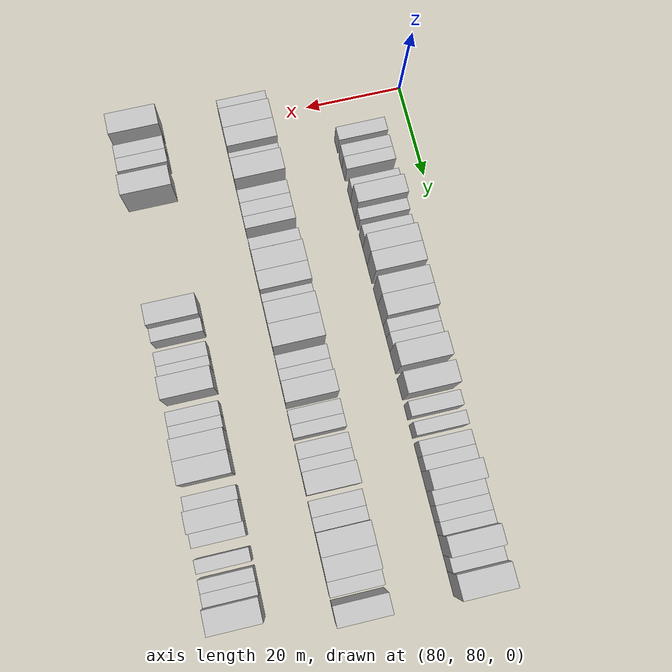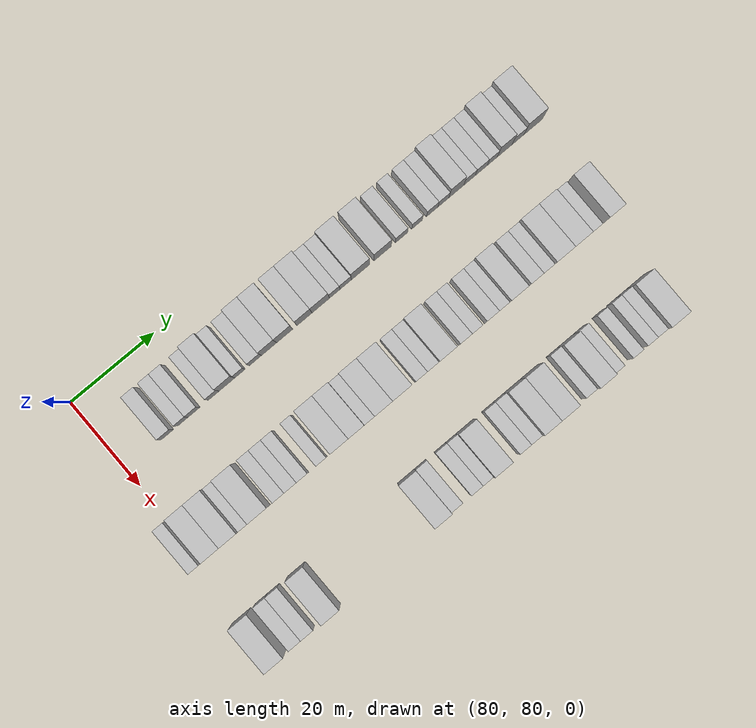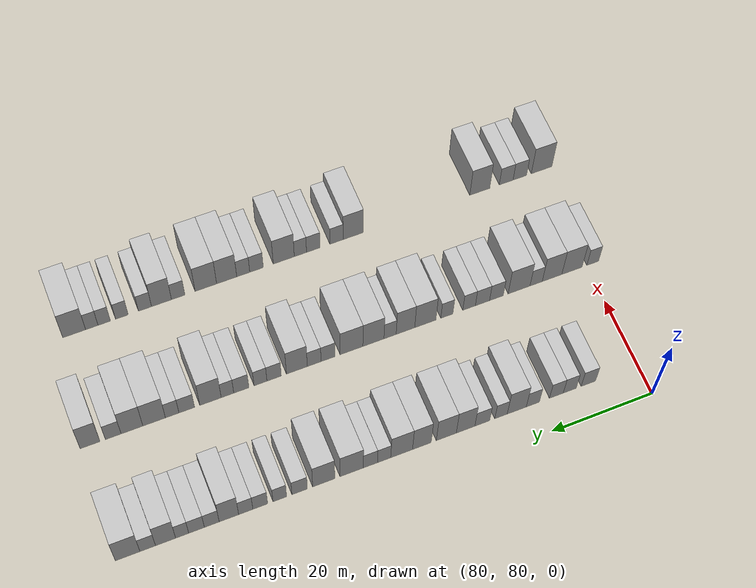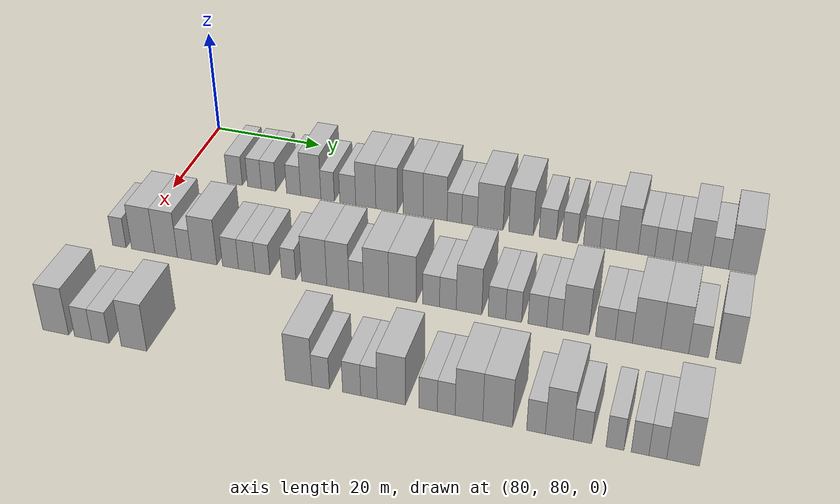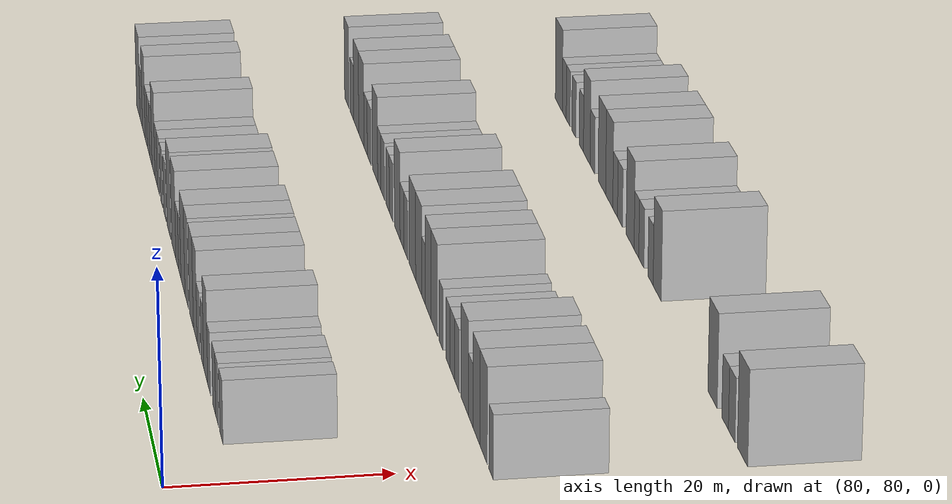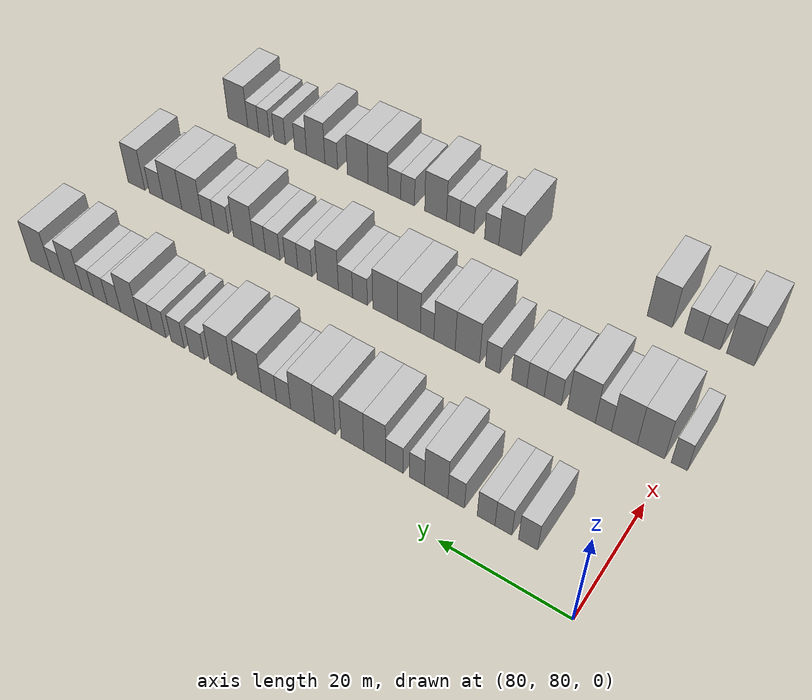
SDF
<sdf version="1.6">
 <world name="default">
  <model name="building_685">
   <static>1</static>
   <pose>91.0000 89.9320 0 0.000000 0.000000 0.000000</pose>
   <link name="link">
    <pose>0 0 3.00 0 0 0</pose>
    <collision name="collision"><geometry><box><size>10.0000 2.8861 6.0000</size></box></geometry></collision>
    <visual name="visual">
     <cast_shadows>0</cast_shadows>
     <geometry><box><size>10.0000 2.8861 6.0000</size></box></geometry>
     <material>
      <script>
       <uri>model://HANNAS_wall/materials/scripts</uri>
       <uri>model://HANNAS_wall/materials/textures</uri>
       <name>vrc/HANNAS_wall</name>
      </script>
     </material>
    </visual>
   </link>
  </model>
  <model name="building_686">
   <static>1</static>
   <pose>91.0000 93.6638 0 0.000000 0.000000 0.000000</pose>
   <link name="link">
    <pose>0 0 3.00 0 0 0</pose>
    <collision name="collision"><geometry><box><size>10.0000 2.5773 6.0000</size></box></geometry></collision>
    <visual name="visual">
     <cast_shadows>0</cast_shadows>
     <geometry><box><size>10.0000 2.5773 6.0000</size></box></geometry>
     <material>
      <script>
       <uri>model://HANNAS_wall/materials/scripts</uri>
       <uri>model://HANNAS_wall/materials/textures</uri>
       <name>vrc/HANNAS_wall</name>
      </script>
     </material>
    </visual>
   </link>
  </model>
  <model name="building_687">
   <static>1</static>
   <pose>91.0000 96.3262 0 0.000000 0.000000 0.000000</pose>
   <link name="link">
    <pose>0 0 3.00 0 0 0</pose>
    <collision name="collision"><geometry><box><size>10.0000 2.7476 6.0000</size></box></geometry></collision>
    <visual name="visual">
     <cast_shadows>0</cast_shadows>
     <geometry><box><size>10.0000 2.7476 6.0000</size></box></geometry>
     <material>
      <script>
       <uri>model://HANNAS_wall/materials/scripts</uri>
       <uri>model://HANNAS_wall/materials/textures</uri>
       <name>vrc/HANNAS_wall</name>
      </script>
     </material>
    </visual>
   </link>
  </model>
  <model name="building_688">
   <static>1</static>
   <pose>91.0000 101.0052 0 0.000000 0.000000 0.000000</pose>
   <link name="link">
    <pose>0 0 3.00 0 0 0</pose>
    <collision name="collision"><geometry><box><size>10.0000 2.6104 6.0000</size></box></geometry></collision>
    <visual name="visual">
     <cast_shadows>0</cast_shadows>
     <geometry><box><size>10.0000 2.6104 6.0000</size></box></geometry>
     <material>
      <script>
       <uri>model://HANNAS_wall/materials/scripts</uri>
       <uri>model://HANNAS_wall/materials/textures</uri>
       <name>vrc/HANNAS_wall</name>
      </script>
     </material>
    </visual>
   </link>
  </model>
  <model name="building_689">
   <static>1</static>
   <pose>91.0000 104.1891 0 0.000000 0.000000 0.000000</pose>
   <link name="link">
    <pose>0 0 4.50 0 0 0</pose>
    <collision name="collision"><geometry><box><size>10.0000 3.7574 9.0000</size></box></geometry></collision>
    <visual name="visual">
     <cast_shadows>0</cast_shadows>
     <geometry><box><size>10.0000 3.7574 9.0000</size></box></geometry>
     <material>
      <script>
       <uri>model://HANNAS_wall/materials/scripts</uri>
       <uri>model://HANNAS_wall/materials/textures</uri>
       <name>vrc/HANNAS_wall</name>
      </script>
     </material>
    </visual>
   </link>
  </model>
  <model name="building_690">
   <static>1</static>
   <pose>91.0000 107.2931 0 0.000000 0.000000 0.000000</pose>
   <link name="link">
    <pose>0 0 3.00 0 0 0</pose>
    <collision name="collision"><geometry><box><size>10.0000 2.4506 6.0000</size></box></geometry></collision>
    <visual name="visual">
     <cast_shadows>0</cast_shadows>
     <geometry><box><size>10.0000 2.4506 6.0000</size></box></geometry>
     <material>
      <script>
       <uri>model://HANNAS_wall/materials/scripts</uri>
       <uri>model://HANNAS_wall/materials/textures</uri>
       <name>vrc/HANNAS_wall</name>
      </script>
     </material>
    </visual>
   </link>
  </model>
  <model name="building_691">
   <static>1</static>
   <pose>91.0000 110.9694 0 0.000000 0.000000 0.000000</pose>
   <link name="link">
    <pose>0 0 3.00 0 0 0</pose>
    <collision name="collision"><geometry><box><size>10.0000 2.9019 6.0000</size></box></geometry></collision>
    <visual name="visual">
     <cast_shadows>0</cast_shadows>
     <geometry><box><size>10.0000 2.9019 6.0000</size></box></geometry>
     <material>
      <script>
       <uri>model://HANNAS_wall/materials/scripts</uri>
       <uri>model://HANNAS_wall/materials/textures</uri>
       <name>vrc/HANNAS_wall</name>
      </script>
     </material>
    </visual>
   </link>
  </model>
  <model name="building_692">
   <static>1</static>
   <pose>91.0000 114.2379 0 0.000000 0.000000 0.000000</pose>
   <link name="link">
    <pose>0 0 4.50 0 0 0</pose>
    <collision name="collision"><geometry><box><size>10.0000 3.6351 9.0000</size></box></geometry></collision>
    <visual name="visual">
     <cast_shadows>0</cast_shadows>
     <geometry><box><size>10.0000 3.6351 9.0000</size></box></geometry>
     <material>
      <script>
       <uri>model://HANNAS_wall/materials/scripts</uri>
       <uri>model://HANNAS_wall/materials/textures</uri>
       <name>vrc/HANNAS_wall</name>
      </script>
     </material>
    </visual>
   </link>
  </model>
  <model name="building_693">
   <static>1</static>
   <pose>91.0000 117.9960 0 0.000000 0.000000 0.000000</pose>
   <link name="link">
    <pose>0 0 4.50 0 0 0</pose>
    <collision name="collision"><geometry><box><size>10.0000 3.8811 9.0000</size></box></geometry></collision>
    <visual name="visual">
     <cast_shadows>0</cast_shadows>
     <geometry><box><size>10.0000 3.8811 9.0000</size></box></geometry>
     <material>
      <script>
       <uri>model://HANNAS_wall/materials/scripts</uri>
       <uri>model://HANNAS_wall/materials/textures</uri>
       <name>vrc/HANNAS_wall</name>
      </script>
     </material>
    </visual>
   </link>
  </model>
  <model name="building_694">
   <static>1</static>
   <pose>91.0000 122.7398 0 0.000000 0.000000 0.000000</pose>
   <link name="link">
    <pose>0 0 4.50 0 0 0</pose>
    <collision name="collision"><geometry><box><size>10.0000 3.6064 9.0000</size></box></geometry></collision>
    <visual name="visual">
     <cast_shadows>0</cast_shadows>
     <geometry><box><size>10.0000 3.6064 9.0000</size></box></geometry>
     <material>
      <script>
       <uri>model://HANNAS_wall/materials/scripts</uri>
       <uri>model://HANNAS_wall/materials/textures</uri>
       <name>vrc/HANNAS_wall</name>
      </script>
     </material>
    </visual>
   </link>
  </model>
  <model name="building_695">
   <static>1</static>
   <pose>91.0000 126.6484 0 0.000000 0.000000 0.000000</pose>
   <link name="link">
    <pose>0 0 4.50 0 0 0</pose>
    <collision name="collision"><geometry><box><size>10.0000 4.2108 9.0000</size></box></geometry></collision>
    <visual name="visual">
     <cast_shadows>0</cast_shadows>
     <geometry><box><size>10.0000 4.2108 9.0000</size></box></geometry>
     <material>
      <script>
       <uri>model://HANNAS_wall/materials/scripts</uri>
       <uri>model://HANNAS_wall/materials/textures</uri>
       <name>vrc/HANNAS_wall</name>
      </script>
     </material>
    </visual>
   </link>
  </model>
  <model name="building_696">
   <static>1</static>
   <pose>91.0000 130.0273 0 0.000000 0.000000 0.000000</pose>
   <link name="link">
    <pose>0 0 3.00 0 0 0</pose>
    <collision name="collision"><geometry><box><size>10.0000 2.5471 6.0000</size></box></geometry></collision>
    <visual name="visual">
     <cast_shadows>0</cast_shadows>
     <geometry><box><size>10.0000 2.5471 6.0000</size></box></geometry>
     <material>
      <script>
       <uri>model://HANNAS_wall/materials/scripts</uri>
       <uri>model://HANNAS_wall/materials/textures</uri>
       <name>vrc/HANNAS_wall</name>
      </script>
     </material>
    </visual>
   </link>
  </model>
  <model name="building_697">
   <static>1</static>
   <pose>91.0000 132.6648 0 0.000000 0.000000 0.000000</pose>
   <link name="link">
    <pose>0 0 3.00 0 0 0</pose>
    <collision name="collision"><geometry><box><size>10.0000 2.7278 6.0000</size></box></geometry></collision>
    <visual name="visual">
     <cast_shadows>0</cast_shadows>
     <geometry><box><size>10.0000 2.7278 6.0000</size></box></geometry>
     <material>
      <script>
       <uri>model://HANNAS_wall/materials/scripts</uri>
       <uri>model://HANNAS_wall/materials/textures</uri>
       <name>vrc/HANNAS_wall</name>
      </script>
     </material>
    </visual>
   </link>
  </model>
  <model name="building_698">
   <static>1</static>
   <pose>91.0000 136.2402 0 0.000000 0.000000 0.000000</pose>
   <link name="link">
    <pose>0 0 4.50 0 0 0</pose>
    <collision name="collision"><geometry><box><size>10.0000 4.4229 9.0000</size></box></geometry></collision>
    <visual name="visual">
     <cast_shadows>0</cast_shadows>
     <geometry><box><size>10.0000 4.4229 9.0000</size></box></geometry>
     <material>
      <script>
       <uri>model://HANNAS_wall/materials/scripts</uri>
       <uri>model://HANNAS_wall/materials/textures</uri>
       <name>vrc/HANNAS_wall</name>
      </script>
     </material>
    </visual>
   </link>
  </model>
  <model name="building_699">
   <static>1</static>
   <pose>91.0000 141.5453 0 0.000000 0.000000 0.000000</pose>
   <link name="link">
    <pose>0 0 4.50 0 0 0</pose>
    <collision name="collision"><geometry><box><size>10.0000 4.1873 9.0000</size></box></geometry></collision>
    <visual name="visual">
     <cast_shadows>0</cast_shadows>
     <geometry><box><size>10.0000 4.1873 9.0000</size></box></geometry>
     <material>
      <script>
       <uri>model://HANNAS_wall/materials/scripts</uri>
       <uri>model://HANNAS_wall/materials/textures</uri>
       <name>vrc/HANNAS_wall</name>
      </script>
     </material>
    </visual>
   </link>
  </model>
  <model name="building_700">
   <static>1</static>
   <pose>91.0000 146.0942 0 0.000000 0.000000 0.000000</pose>
   <link name="link">
    <pose>0 0 3.00 0 0 0</pose>
    <collision name="collision"><geometry><box><size>10.0000 2.9106 6.0000</size></box></geometry></collision>
    <visual name="visual">
     <cast_shadows>0</cast_shadows>
     <geometry><box><size>10.0000 2.9106 6.0000</size></box></geometry>
     <material>
      <script>
       <uri>model://HANNAS_wall/materials/scripts</uri>
       <uri>model://HANNAS_wall/materials/textures</uri>
       <name>vrc/HANNAS_wall</name>
      </script>
     </material>
    </visual>
   </link>
  </model>
  <model name="building_701">
   <static>1</static>
   <pose>91.0000 149.8299 0 0.000000 0.000000 0.000000</pose>
   <link name="link">
    <pose>0 0 3.00 0 0 0</pose>
    <collision name="collision"><geometry><box><size>10.0000 2.5608 6.0000</size></box></geometry></collision>
    <visual name="visual">
     <cast_shadows>0</cast_shadows>
     <geometry><box><size>10.0000 2.5608 6.0000</size></box></geometry>
     <material>
      <script>
       <uri>model://HANNAS_wall/materials/scripts</uri>
       <uri>model://HANNAS_wall/materials/textures</uri>
       <name>vrc/HANNAS_wall</name>
      </script>
     </material>
    </visual>
   </link>
  </model>
  <model name="building_702">
   <static>1</static>
   <pose>91.0000 153.4965 0 0.000000 0.000000 0.000000</pose>
   <link name="link">
    <pose>0 0 3.00 0 0 0</pose>
    <collision name="collision"><geometry><box><size>10.0000 2.7725 6.0000</size></box></geometry></collision>
    <visual name="visual">
     <cast_shadows>0</cast_shadows>
     <geometry><box><size>10.0000 2.7725 6.0000</size></box></geometry>
     <material>
      <script>
       <uri>model://HANNAS_wall/materials/scripts</uri>
       <uri>model://HANNAS_wall/materials/textures</uri>
       <name>vrc/HANNAS_wall</name>
      </script>
     </material>
    </visual>
   </link>
  </model>
  <model name="building_703">
   <static>1</static>
   <pose>91.0000 156.2054 0 0.000000 0.000000 0.000000</pose>
   <link name="link">
    <pose>0 0 3.00 0 0 0</pose>
    <collision name="collision"><geometry><box><size>10.0000 2.6454 6.0000</size></box></geometry></collision>
    <visual name="visual">
     <cast_shadows>0</cast_shadows>
     <geometry><box><size>10.0000 2.6454 6.0000</size></box></geometry>
     <material>
      <script>
       <uri>model://HANNAS_wall/materials/scripts</uri>
       <uri>model://HANNAS_wall/materials/textures</uri>
       <name>vrc/HANNAS_wall</name>
      </script>
     </material>
    </visual>
   </link>
  </model>
  <model name="building_704">
   <static>1</static>
   <pose>91.0000 159.3376 0 0.000000 0.000000 0.000000</pose>
   <link name="link">
    <pose>0 0 4.50 0 0 0</pose>
    <collision name="collision"><geometry><box><size>10.0000 3.6189 9.0000</size></box></geometry></collision>
    <visual name="visual">
     <cast_shadows>0</cast_shadows>
     <geometry><box><size>10.0000 3.6189 9.0000</size></box></geometry>
     <material>
      <script>
       <uri>model://HANNAS_wall/materials/scripts</uri>
       <uri>model://HANNAS_wall/materials/textures</uri>
       <name>vrc/HANNAS_wall</name>
      </script>
     </material>
    </visual>
   </link>
  </model>
  <model name="building_705">
   <static>1</static>
   <pose>91.0000 162.5185 0 0.000000 0.000000 0.000000</pose>
   <link name="link">
    <pose>0 0 3.00 0 0 0</pose>
    <collision name="collision"><geometry><box><size>10.0000 2.7431 6.0000</size></box></geometry></collision>
    <visual name="visual">
     <cast_shadows>0</cast_shadows>
     <geometry><box><size>10.0000 2.7431 6.0000</size></box></geometry>
     <material>
      <script>
       <uri>model://HANNAS_wall/materials/scripts</uri>
       <uri>model://HANNAS_wall/materials/textures</uri>
       <name>vrc/HANNAS_wall</name>
      </script>
     </material>
    </visual>
   </link>
  </model>
  <model name="building_706">
   <static>1</static>
   <pose>91.0000 165.3400 0 0.000000 0.000000 0.000000</pose>
   <link name="link">
    <pose>0 0 3.00 0 0 0</pose>
    <collision name="collision"><geometry><box><size>10.0000 2.8998 6.0000</size></box></geometry></collision>
    <visual name="visual">
     <cast_shadows>0</cast_shadows>
     <geometry><box><size>10.0000 2.8998 6.0000</size></box></geometry>
     <material>
      <script>
       <uri>model://HANNAS_wall/materials/scripts</uri>
       <uri>model://HANNAS_wall/materials/textures</uri>
       <name>vrc/HANNAS_wall</name>
      </script>
     </material>
    </visual>
   </link>
  </model>
  <model name="building_707">
   <static>1</static>
   <pose>91.0000 168.0000 0 0.000000 0.000000 0.000000</pose>
   <link name="link">
    <pose>0 0 3.00 0 0 0</pose>
    <collision name="collision"><geometry><box><size>10.0000 2.4203 6.0000</size></box></geometry></collision>
    <visual name="visual">
     <cast_shadows>0</cast_shadows>
     <geometry><box><size>10.0000 2.4203 6.0000</size></box></geometry>
     <material>
      <script>
       <uri>model://HANNAS_wall/materials/scripts</uri>
       <uri>model://HANNAS_wall/materials/textures</uri>
       <name>vrc/HANNAS_wall</name>
      </script>
     </material>
    </visual>
   </link>
  </model>
  <model name="building_708">
   <static>1</static>
   <pose>91.0000 171.0512 0 0.000000 0.000000 0.000000</pose>
   <link name="link">
    <pose>0 0 4.50 0 0 0</pose>
    <collision name="collision"><geometry><box><size>10.0000 3.6820 9.0000</size></box></geometry></collision>
    <visual name="visual">
     <cast_shadows>0</cast_shadows>
     <geometry><box><size>10.0000 3.6820 9.0000</size></box></geometry>
     <material>
      <script>
       <uri>model://HANNAS_wall/materials/scripts</uri>
       <uri>model://HANNAS_wall/materials/textures</uri>
       <name>vrc/HANNAS_wall</name>
      </script>
     </material>
    </visual>
   </link>
  </model>
  <model name="building_709">
   <static>1</static>
   <pose>91.0000 174.3193 0 0.000000 0.000000 0.000000</pose>
   <link name="link">
    <pose>0 0 3.00 0 0 0</pose>
    <collision name="collision"><geometry><box><size>10.0000 2.8543 6.0000</size></box></geometry></collision>
    <visual name="visual">
     <cast_shadows>0</cast_shadows>
     <geometry><box><size>10.0000 2.8543 6.0000</size></box></geometry>
     <material>
      <script>
       <uri>model://HANNAS_wall/materials/scripts</uri>
       <uri>model://HANNAS_wall/materials/textures</uri>
       <name>vrc/HANNAS_wall</name>
      </script>
     </material>
    </visual>
   </link>
  </model>
  <model name="building_710">
   <static>1</static>
   <pose>91.0000 177.9900 0 0.000000 0.000000 0.000000</pose>
   <link name="link">
    <pose>0 0 4.50 0 0 0</pose>
    <collision name="collision"><geometry><box><size>10.0000 4.4870 9.0000</size></box></geometry></collision>
    <visual name="visual">
     <cast_shadows>0</cast_shadows>
     <geometry><box><size>10.0000 4.4870 9.0000</size></box></geometry>
     <material>
      <script>
       <uri>model://HANNAS_wall/materials/scripts</uri>
       <uri>model://HANNAS_wall/materials/textures</uri>
       <name>vrc/HANNAS_wall</name>
      </script>
     </material>
    </visual>
   </link>
  </model>
  <model name="building_858">
   <static>1</static>
   <pose>113.0000 78.6577 0 0.000000 0.000000 0.000000</pose>
   <link name="link">
    <pose>0 0 3.00 0 0 0</pose>
    <collision name="collision"><geometry><box><size>10.0000 2.4274 6.0000</size></box></geometry></collision>
    <visual name="visual">
     <cast_shadows>0</cast_shadows>
     <geometry><box><size>10.0000 2.4274 6.0000</size></box></geometry>
     <material>
      <script>
       <uri>model://HANNAS_wall/materials/scripts</uri>
       <uri>model://HANNAS_wall/materials/textures</uri>
       <name>vrc/HANNAS_wall</name>
      </script>
     </material>
    </visual>
   </link>
  </model>
  <model name="building_859">
   <static>1</static>
   <pose>113.0000 82.9615 0 0.000000 0.000000 0.000000</pose>
   <link name="link">
    <pose>0 0 4.50 0 0 0</pose>
    <collision name="collision"><geometry><box><size>10.0000 4.1802 9.0000</size></box></geometry></collision>
    <visual name="visual">
     <cast_shadows>0</cast_shadows>
     <geometry><box><size>10.0000 4.1802 9.0000</size></box></geometry>
     <material>
      <script>
       <uri>model://HANNAS_wall/materials/scripts</uri>
       <uri>model://HANNAS_wall/materials/textures</uri>
       <name>vrc/HANNAS_wall</name>
      </script>
     </material>
    </visual>
   </link>
  </model>
  <model name="building_860">
   <static>1</static>
   <pose>113.0000 87.0670 0 0.000000 0.000000 0.000000</pose>
   <link name="link">
    <pose>0 0 4.50 0 0 0</pose>
    <collision name="collision"><geometry><box><size>10.0000 4.0307 9.0000</size></box></geometry></collision>
    <visual name="visual">
     <cast_shadows>0</cast_shadows>
     <geometry><box><size>10.0000 4.0307 9.0000</size></box></geometry>
     <material>
      <script>
       <uri>model://HANNAS_wall/materials/scripts</uri>
       <uri>model://HANNAS_wall/materials/textures</uri>
       <name>vrc/HANNAS_wall</name>
      </script>
     </material>
    </visual>
   </link>
  </model>
  <model name="building_861">
   <static>1</static>
   <pose>113.0000 90.3399 0 0.000000 0.000000 0.000000</pose>
   <link name="link">
    <pose>0 0 3.00 0 0 0</pose>
    <collision name="collision"><geometry><box><size>10.0000 2.5150 6.0000</size></box></geometry></collision>
    <visual name="visual">
     <cast_shadows>0</cast_shadows>
     <geometry><box><size>10.0000 2.5150 6.0000</size></box></geometry>
     <material>
      <script>
       <uri>model://HANNAS_wall/materials/scripts</uri>
       <uri>model://HANNAS_wall/materials/textures</uri>
       <name>vrc/HANNAS_wall</name>
      </script>
     </material>
    </visual>
   </link>
  </model>
  <model name="building_862">
   <static>1</static>
   <pose>113.0000 93.8302 0 0.000000 0.000000 0.000000</pose>
   <link name="link">
    <pose>0 0 4.50 0 0 0</pose>
    <collision name="collision"><geometry><box><size>10.0000 4.4657 9.0000</size></box></geometry></collision>
    <visual name="visual">
     <cast_shadows>0</cast_shadows>
     <geometry><box><size>10.0000 4.4657 9.0000</size></box></geometry>
     <material>
      <script>
       <uri>model://HANNAS_wall/materials/scripts</uri>
       <uri>model://HANNAS_wall/materials/textures</uri>
       <name>vrc/HANNAS_wall</name>
      </script>
     </material>
    </visual>
   </link>
  </model>
  <model name="building_863">
   <static>1</static>
   <pose>113.0000 98.4518 0 0.000000 0.000000 0.000000</pose>
   <link name="link">
    <pose>0 0 3.00 0 0 0</pose>
    <collision name="collision"><geometry><box><size>10.0000 2.7774 6.0000</size></box></geometry></collision>
    <visual name="visual">
     <cast_shadows>0</cast_shadows>
     <geometry><box><size>10.0000 2.7774 6.0000</size></box></geometry>
     <material>
      <script>
       <uri>model://HANNAS_wall/materials/scripts</uri>
       <uri>model://HANNAS_wall/materials/textures</uri>
       <name>vrc/HANNAS_wall</name>
      </script>
     </material>
    </visual>
   </link>
  </model>
  <model name="building_864">
   <static>1</static>
   <pose>113.0000 101.2819 0 0.000000 0.000000 0.000000</pose>
   <link name="link">
    <pose>0 0 3.00 0 0 0</pose>
    <collision name="collision"><geometry><box><size>10.0000 2.8827 6.0000</size></box></geometry></collision>
    <visual name="visual">
     <cast_shadows>0</cast_shadows>
     <geometry><box><size>10.0000 2.8827 6.0000</size></box></geometry>
     <material>
      <script>
       <uri>model://HANNAS_wall/materials/scripts</uri>
       <uri>model://HANNAS_wall/materials/textures</uri>
       <name>vrc/HANNAS_wall</name>
      </script>
     </material>
    </visual>
   </link>
  </model>
  <model name="building_865">
   <static>1</static>
   <pose>113.0000 103.9933 0 0.000000 0.000000 0.000000</pose>
   <link name="link">
    <pose>0 0 3.00 0 0 0</pose>
    <collision name="collision"><geometry><box><size>10.0000 2.5401 6.0000</size></box></geometry></collision>
    <visual name="visual">
     <cast_shadows>0</cast_shadows>
     <geometry><box><size>10.0000 2.5401 6.0000</size></box></geometry>
     <material>
      <script>
       <uri>model://HANNAS_wall/materials/scripts</uri>
       <uri>model://HANNAS_wall/materials/textures</uri>
       <name>vrc/HANNAS_wall</name>
      </script>
     </material>
    </visual>
   </link>
  </model>
  <model name="building_866">
   <static>1</static>
   <pose>113.0000 108.4791 0 0.000000 0.000000 0.000000</pose>
   <link name="link">
    <pose>0 0 3.00 0 0 0</pose>
    <collision name="collision"><geometry><box><size>10.0000 2.4315 6.0000</size></box></geometry></collision>
    <visual name="visual">
     <cast_shadows>0</cast_shadows>
     <geometry><box><size>10.0000 2.4315 6.0000</size></box></geometry>
     <material>
      <script>
       <uri>model://HANNAS_wall/materials/scripts</uri>
       <uri>model://HANNAS_wall/materials/textures</uri>
       <name>vrc/HANNAS_wall</name>
      </script>
     </material>
    </visual>
   </link>
  </model>
  <model name="building_867">
   <static>1</static>
   <pose>113.0000 112.8148 0 0.000000 0.000000 0.000000</pose>
   <link name="link">
    <pose>0 0 4.50 0 0 0</pose>
    <collision name="collision"><geometry><box><size>10.0000 4.2400 9.0000</size></box></geometry></collision>
    <visual name="visual">
     <cast_shadows>0</cast_shadows>
     <geometry><box><size>10.0000 4.2400 9.0000</size></box></geometry>
     <material>
      <script>
       <uri>model://HANNAS_wall/materials/scripts</uri>
       <uri>model://HANNAS_wall/materials/textures</uri>
       <name>vrc/HANNAS_wall</name>
      </script>
     </material>
    </visual>
   </link>
  </model>
  <model name="building_868">
   <static>1</static>
   <pose>113.0000 116.7891 0 0.000000 0.000000 0.000000</pose>
   <link name="link">
    <pose>0 0 4.50 0 0 0</pose>
    <collision name="collision"><geometry><box><size>10.0000 3.7085 9.0000</size></box></geometry></collision>
    <visual name="visual">
     <cast_shadows>0</cast_shadows>
     <geometry><box><size>10.0000 3.7085 9.0000</size></box></geometry>
     <material>
      <script>
       <uri>model://HANNAS_wall/materials/scripts</uri>
       <uri>model://HANNAS_wall/materials/textures</uri>
       <name>vrc/HANNAS_wall</name>
      </script>
     </material>
    </visual>
   </link>
  </model>
  <model name="building_869">
   <static>1</static>
   <pose>113.0000 119.8556 0 0.000000 0.000000 0.000000</pose>
   <link name="link">
    <pose>0 0 3.00 0 0 0</pose>
    <collision name="collision"><geometry><box><size>10.0000 2.4247 6.0000</size></box></geometry></collision>
    <visual name="visual">
     <cast_shadows>0</cast_shadows>
     <geometry><box><size>10.0000 2.4247 6.0000</size></box></geometry>
     <material>
      <script>
       <uri>model://HANNAS_wall/materials/scripts</uri>
       <uri>model://HANNAS_wall/materials/textures</uri>
       <name>vrc/HANNAS_wall</name>
      </script>
     </material>
    </visual>
   </link>
  </model>
  <model name="building_870">
   <static>1</static>
   <pose>113.0000 123.1537 0 0.000000 0.000000 0.000000</pose>
   <link name="link">
    <pose>0 0 4.50 0 0 0</pose>
    <collision name="collision"><geometry><box><size>10.0000 4.1715 9.0000</size></box></geometry></collision>
    <visual name="visual">
     <cast_shadows>0</cast_shadows>
     <geometry><box><size>10.0000 4.1715 9.0000</size></box></geometry>
     <material>
      <script>
       <uri>model://HANNAS_wall/materials/scripts</uri>
       <uri>model://HANNAS_wall/materials/textures</uri>
       <name>vrc/HANNAS_wall</name>
      </script>
     </material>
    </visual>
   </link>
  </model>
  <model name="building_871">
   <static>1</static>
   <pose>113.0000 127.4881 0 0.000000 0.000000 0.000000</pose>
   <link name="link">
    <pose>0 0 4.50 0 0 0</pose>
    <collision name="collision"><geometry><box><size>10.0000 4.4974 9.0000</size></box></geometry></collision>
    <visual name="visual">
     <cast_shadows>0</cast_shadows>
     <geometry><box><size>10.0000 4.4974 9.0000</size></box></geometry>
     <material>
      <script>
       <uri>model://HANNAS_wall/materials/scripts</uri>
       <uri>model://HANNAS_wall/materials/textures</uri>
       <name>vrc/HANNAS_wall</name>
      </script>
     </material>
    </visual>
   </link>
  </model>
  <model name="building_872">
   <static>1</static>
   <pose>113.0000 132.1165 0 0.000000 0.000000 0.000000</pose>
   <link name="link">
    <pose>0 0 3.00 0 0 0</pose>
    <collision name="collision"><geometry><box><size>10.0000 2.7594 6.0000</size></box></geometry></collision>
    <visual name="visual">
     <cast_shadows>0</cast_shadows>
     <geometry><box><size>10.0000 2.7594 6.0000</size></box></geometry>
     <material>
      <script>
       <uri>model://HANNAS_wall/materials/scripts</uri>
       <uri>model://HANNAS_wall/materials/textures</uri>
       <name>vrc/HANNAS_wall</name>
      </script>
     </material>
    </visual>
   </link>
  </model>
  <model name="building_873">
   <static>1</static>
   <pose>113.0000 134.8420 0 0.000000 0.000000 0.000000</pose>
   <link name="link">
    <pose>0 0 3.00 0 0 0</pose>
    <collision name="collision"><geometry><box><size>10.0000 2.6916 6.0000</size></box></geometry></collision>
    <visual name="visual">
     <cast_shadows>0</cast_shadows>
     <geometry><box><size>10.0000 2.6916 6.0000</size></box></geometry>
     <material>
      <script>
       <uri>model://HANNAS_wall/materials/scripts</uri>
       <uri>model://HANNAS_wall/materials/textures</uri>
       <name>vrc/HANNAS_wall</name>
      </script>
     </material>
    </visual>
   </link>
  </model>
  <model name="building_874">
   <static>1</static>
   <pose>113.0000 138.2211 0 0.000000 0.000000 0.000000</pose>
   <link name="link">
    <pose>0 0 4.50 0 0 0</pose>
    <collision name="collision"><geometry><box><size>10.0000 4.0667 9.0000</size></box></geometry></collision>
    <visual name="visual">
     <cast_shadows>0</cast_shadows>
     <geometry><box><size>10.0000 4.0667 9.0000</size></box></geometry>
     <material>
      <script>
       <uri>model://HANNAS_wall/materials/scripts</uri>
       <uri>model://HANNAS_wall/materials/textures</uri>
       <name>vrc/HANNAS_wall</name>
      </script>
     </material>
    </visual>
   </link>
  </model>
  <model name="building_875">
   <static>1</static>
   <pose>113.0000 142.6462 0 0.000000 0.000000 0.000000</pose>
   <link name="link">
    <pose>0 0 3.00 0 0 0</pose>
    <collision name="collision"><geometry><box><size>10.0000 2.7834 6.0000</size></box></geometry></collision>
    <visual name="visual">
     <cast_shadows>0</cast_shadows>
     <geometry><box><size>10.0000 2.7834 6.0000</size></box></geometry>
     <material>
      <script>
       <uri>model://HANNAS_wall/materials/scripts</uri>
       <uri>model://HANNAS_wall/materials/textures</uri>
       <name>vrc/HANNAS_wall</name>
      </script>
     </material>
    </visual>
   </link>
  </model>
  <model name="building_876">
   <static>1</static>
   <pose>113.0000 145.2845 0 0.000000 0.000000 0.000000</pose>
   <link name="link">
    <pose>0 0 3.00 0 0 0</pose>
    <collision name="collision"><geometry><box><size>10.0000 2.4933 6.0000</size></box></geometry></collision>
    <visual name="visual">
     <cast_shadows>0</cast_shadows>
     <geometry><box><size>10.0000 2.4933 6.0000</size></box></geometry>
     <material>
      <script>
       <uri>model://HANNAS_wall/materials/scripts</uri>
       <uri>model://HANNAS_wall/materials/textures</uri>
       <name>vrc/HANNAS_wall</name>
      </script>
     </material>
    </visual>
   </link>
  </model>
  <model name="building_877">
   <static>1</static>
   <pose>113.0000 148.9923 0 0.000000 0.000000 0.000000</pose>
   <link name="link">
    <pose>0 0 3.00 0 0 0</pose>
    <collision name="collision"><geometry><box><size>10.0000 2.9221 6.0000</size></box></geometry></collision>
    <visual name="visual">
     <cast_shadows>0</cast_shadows>
     <geometry><box><size>10.0000 2.9221 6.0000</size></box></geometry>
     <material>
      <script>
       <uri>model://HANNAS_wall/materials/scripts</uri>
       <uri>model://HANNAS_wall/materials/textures</uri>
       <name>vrc/HANNAS_wall</name>
      </script>
     </material>
    </visual>
   </link>
  </model>
  <model name="building_878">
   <static>1</static>
   <pose>113.0000 151.6614 0 0.000000 0.000000 0.000000</pose>
   <link name="link">
    <pose>0 0 3.00 0 0 0</pose>
    <collision name="collision"><geometry><box><size>10.0000 2.4162 6.0000</size></box></geometry></collision>
    <visual name="visual">
     <cast_shadows>0</cast_shadows>
     <geometry><box><size>10.0000 2.4162 6.0000</size></box></geometry>
     <material>
      <script>
       <uri>model://HANNAS_wall/materials/scripts</uri>
       <uri>model://HANNAS_wall/materials/textures</uri>
       <name>vrc/HANNAS_wall</name>
      </script>
     </material>
    </visual>
   </link>
  </model>
  <model name="building_879">
   <static>1</static>
   <pose>113.0000 154.9212 0 0.000000 0.000000 0.000000</pose>
   <link name="link">
    <pose>0 0 4.50 0 0 0</pose>
    <collision name="collision"><geometry><box><size>10.0000 4.1034 9.0000</size></box></geometry></collision>
    <visual name="visual">
     <cast_shadows>0</cast_shadows>
     <geometry><box><size>10.0000 4.1034 9.0000</size></box></geometry>
     <material>
      <script>
       <uri>model://HANNAS_wall/materials/scripts</uri>
       <uri>model://HANNAS_wall/materials/textures</uri>
       <name>vrc/HANNAS_wall</name>
      </script>
     </material>
    </visual>
   </link>
  </model>
  <model name="building_880">
   <static>1</static>
   <pose>113.0000 159.4670 0 0.000000 0.000000 0.000000</pose>
   <link name="link">
    <pose>0 0 3.00 0 0 0</pose>
    <collision name="collision"><geometry><box><size>10.0000 2.9881 6.0000</size></box></geometry></collision>
    <visual name="visual">
     <cast_shadows>0</cast_shadows>
     <geometry><box><size>10.0000 2.9881 6.0000</size></box></geometry>
     <material>
      <script>
       <uri>model://HANNAS_wall/materials/scripts</uri>
       <uri>model://HANNAS_wall/materials/textures</uri>
       <name>vrc/HANNAS_wall</name>
      </script>
     </material>
    </visual>
   </link>
  </model>
  <model name="building_881">
   <static>1</static>
   <pose>113.0000 162.2488 0 0.000000 0.000000 0.000000</pose>
   <link name="link">
    <pose>0 0 3.00 0 0 0</pose>
    <collision name="collision"><geometry><box><size>10.0000 2.5754 6.0000</size></box></geometry></collision>
    <visual name="visual">
     <cast_shadows>0</cast_shadows>
     <geometry><box><size>10.0000 2.5754 6.0000</size></box></geometry>
     <material>
      <script>
       <uri>model://HANNAS_wall/materials/scripts</uri>
       <uri>model://HANNAS_wall/materials/textures</uri>
       <name>vrc/HANNAS_wall</name>
      </script>
     </material>
    </visual>
   </link>
  </model>
  <model name="building_882">
   <static>1</static>
   <pose>113.0000 165.6754 0 0.000000 0.000000 0.000000</pose>
   <link name="link">
    <pose>0 0 4.50 0 0 0</pose>
    <collision name="collision"><geometry><box><size>10.0000 4.2779 9.0000</size></box></geometry></collision>
    <visual name="visual">
     <cast_shadows>0</cast_shadows>
     <geometry><box><size>10.0000 4.2779 9.0000</size></box></geometry>
     <material>
      <script>
       <uri>model://HANNAS_wall/materials/scripts</uri>
       <uri>model://HANNAS_wall/materials/textures</uri>
       <name>vrc/HANNAS_wall</name>
      </script>
     </material>
    </visual>
   </link>
  </model>
  <model name="building_883">
   <static>1</static>
   <pose>113.0000 169.8684 0 0.000000 0.000000 0.000000</pose>
   <link name="link">
    <pose>0 0 4.50 0 0 0</pose>
    <collision name="collision"><geometry><box><size>10.0000 4.1082 9.0000</size></box></geometry></collision>
    <visual name="visual">
     <cast_shadows>0</cast_shadows>
     <geometry><box><size>10.0000 4.1082 9.0000</size></box></geometry>
     <material>
      <script>
       <uri>model://HANNAS_wall/materials/scripts</uri>
       <uri>model://HANNAS_wall/materials/textures</uri>
       <name>vrc/HANNAS_wall</name>
      </script>
     </material>
    </visual>
   </link>
  </model>
  <model name="building_884">
   <static>1</static>
   <pose>113.0000 173.3997 0 0.000000 0.000000 0.000000</pose>
   <link name="link">
    <pose>0 0 3.00 0 0 0</pose>
    <collision name="collision"><geometry><box><size>10.0000 2.9543 6.0000</size></box></geometry></collision>
    <visual name="visual">
     <cast_shadows>0</cast_shadows>
     <geometry><box><size>10.0000 2.9543 6.0000</size></box></geometry>
     <material>
      <script>
       <uri>model://HANNAS_wall/materials/scripts</uri>
       <uri>model://HANNAS_wall/materials/textures</uri>
       <name>vrc/HANNAS_wall</name>
      </script>
     </material>
    </visual>
   </link>
  </model>
  <model name="building_885">
   <static>1</static>
   <pose>113.0000 177.7388 0 0.000000 0.000000 0.000000</pose>
   <link name="link">
    <pose>0 0 4.50 0 0 0</pose>
    <collision name="collision"><geometry><box><size>10.0000 3.7239 9.0000</size></box></geometry></collision>
    <visual name="visual">
     <cast_shadows>0</cast_shadows>
     <geometry><box><size>10.0000 3.7239 9.0000</size></box></geometry>
     <material>
      <script>
       <uri>model://HANNAS_wall/materials/scripts</uri>
       <uri>model://HANNAS_wall/materials/textures</uri>
       <name>vrc/HANNAS_wall</name>
      </script>
     </material>
    </visual>
   </link>
  </model>
  <model name="building_1049">
   <static>1</static>
   <pose>135.0000 79.1564 0 0.000000 0.000000 0.000000</pose>
   <link name="link">
    <pose>0 0 4.50 0 0 0</pose>
    <collision name="collision"><geometry><box><size>10.0000 4.3721 9.0000</size></box></geometry></collision>
    <visual name="visual">
     <cast_shadows>0</cast_shadows>
     <geometry><box><size>10.0000 4.3721 9.0000</size></box></geometry>
     <material>
      <script>
       <uri>model://HANNAS_wall/materials/scripts</uri>
       <uri>model://HANNAS_wall/materials/textures</uri>
       <name>vrc/HANNAS_wall</name>
      </script>
     </material>
    </visual>
   </link>
  </model>
  <model name="building_1050">
   <static>1</static>
   <pose>135.0000 83.7674 0 0.000000 0.000000 0.000000</pose>
   <link name="link">
    <pose>0 0 3.00 0 0 0</pose>
    <collision name="collision"><geometry><box><size>10.0000 2.8498 6.0000</size></box></geometry></collision>
    <visual name="visual">
     <cast_shadows>0</cast_shadows>
     <geometry><box><size>10.0000 2.8498 6.0000</size></box></geometry>
     <material>
      <script>
       <uri>model://HANNAS_wall/materials/scripts</uri>
       <uri>model://HANNAS_wall/materials/textures</uri>
       <name>vrc/HANNAS_wall</name>
      </script>
     </material>
    </visual>
   </link>
  </model>
  <model name="building_1051">
   <static>1</static>
   <pose>135.0000 86.6476 0 0.000000 0.000000 0.000000</pose>
   <link name="link">
    <pose>0 0 3.00 0 0 0</pose>
    <collision name="collision"><geometry><box><size>10.0000 2.9107 6.0000</size></box></geometry></collision>
    <visual name="visual">
     <cast_shadows>0</cast_shadows>
     <geometry><box><size>10.0000 2.9107 6.0000</size></box></geometry>
     <material>
      <script>
       <uri>model://HANNAS_wall/materials/scripts</uri>
       <uri>model://HANNAS_wall/materials/textures</uri>
       <name>vrc/HANNAS_wall</name>
      </script>
     </material>
    </visual>
   </link>
  </model>
  <model name="building_1052">
   <static>1</static>
   <pose>135.0000 92.1927 0 0.000000 0.000000 0.000000</pose>
   <link name="link">
    <pose>0 0 4.50 0 0 0</pose>
    <collision name="collision"><geometry><box><size>10.0000 4.1794 9.0000</size></box></geometry></collision>
    <visual name="visual">
     <cast_shadows>0</cast_shadows>
     <geometry><box><size>10.0000 4.1794 9.0000</size></box></geometry>
     <material>
      <script>
       <uri>model://HANNAS_wall/materials/scripts</uri>
       <uri>model://HANNAS_wall/materials/textures</uri>
       <name>vrc/HANNAS_wall</name>
      </script>
     </material>
    </visual>
   </link>
  </model>
  <model name="building_1053">
   <static>1</static>
   <pose>135.0000 118.4180 0 0.000000 0.000000 0.000000</pose>
   <link name="link">
    <pose>0 0 4.50 0 0 0</pose>
    <collision name="collision"><geometry><box><size>10.0000 4.0905 9.0000</size></box></geometry></collision>
    <visual name="visual">
     <cast_shadows>0</cast_shadows>
     <geometry><box><size>10.0000 4.0905 9.0000</size></box></geometry>
     <material>
      <script>
       <uri>model://HANNAS_wall/materials/scripts</uri>
       <uri>model://HANNAS_wall/materials/textures</uri>
       <name>vrc/HANNAS_wall</name>
      </script>
     </material>
    </visual>
   </link>
  </model>
  <model name="building_1054">
   <static>1</static>
   <pose>135.0000 121.7973 0 0.000000 0.000000 0.000000</pose>
   <link name="link">
    <pose>0 0 3.00 0 0 0</pose>
    <collision name="collision"><geometry><box><size>10.0000 2.6681 6.0000</size></box></geometry></collision>
    <visual name="visual">
     <cast_shadows>0</cast_shadows>
     <geometry><box><size>10.0000 2.6681 6.0000</size></box></geometry>
     <material>
      <script>
       <uri>model://HANNAS_wall/materials/scripts</uri>
       <uri>model://HANNAS_wall/materials/textures</uri>
       <name>vrc/HANNAS_wall</name>
      </script>
     </material>
    </visual>
   </link>
  </model>
  <model name="building_1055">
   <static>1</static>
   <pose>135.0000 126.5009 0 0.000000 0.000000 0.000000</pose>
   <link name="link">
    <pose>0 0 3.00 0 0 0</pose>
    <collision name="collision"><geometry><box><size>10.0000 2.7391 6.0000</size></box></geometry></collision>
    <visual name="visual">
     <cast_shadows>0</cast_shadows>
     <geometry><box><size>10.0000 2.7391 6.0000</size></box></geometry>
     <material>
      <script>
       <uri>model://HANNAS_wall/materials/scripts</uri>
       <uri>model://HANNAS_wall/materials/textures</uri>
       <name>vrc/HANNAS_wall</name>
      </script>
     </material>
    </visual>
   </link>
  </model>
  <model name="building_1056">
   <static>1</static>
   <pose>135.0000 129.1035 0 0.000000 0.000000 0.000000</pose>
   <link name="link">
    <pose>0 0 3.00 0 0 0</pose>
    <collision name="collision"><geometry><box><size>10.0000 2.4662 6.0000</size></box></geometry></collision>
    <visual name="visual">
     <cast_shadows>0</cast_shadows>
     <geometry><box><size>10.0000 2.4662 6.0000</size></box></geometry>
     <material>
      <script>
       <uri>model://HANNAS_wall/materials/scripts</uri>
       <uri>model://HANNAS_wall/materials/textures</uri>
       <name>vrc/HANNAS_wall</name>
      </script>
     </material>
    </visual>
   </link>
  </model>
  <model name="building_1057">
   <static>1</static>
   <pose>135.0000 132.4508 0 0.000000 0.000000 0.000000</pose>
   <link name="link">
    <pose>0 0 4.50 0 0 0</pose>
    <collision name="collision"><geometry><box><size>10.0000 4.2282 9.0000</size></box></geometry></collision>
    <visual name="visual">
     <cast_shadows>0</cast_shadows>
     <geometry><box><size>10.0000 4.2282 9.0000</size></box></geometry>
     <material>
      <script>
       <uri>model://HANNAS_wall/materials/scripts</uri>
       <uri>model://HANNAS_wall/materials/textures</uri>
       <name>vrc/HANNAS_wall</name>
      </script>
     </material>
    </visual>
   </link>
  </model>
  <model name="building_1058">
   <static>1</static>
   <pose>135.0000 137.9166 0 0.000000 0.000000 0.000000</pose>
   <link name="link">
    <pose>0 0 3.00 0 0 0</pose>
    <collision name="collision"><geometry><box><size>10.0000 2.7034 6.0000</size></box></geometry></collision>
    <visual name="visual">
     <cast_shadows>0</cast_shadows>
     <geometry><box><size>10.0000 2.7034 6.0000</size></box></geometry>
     <material>
      <script>
       <uri>model://HANNAS_wall/materials/scripts</uri>
       <uri>model://HANNAS_wall/materials/textures</uri>
       <name>vrc/HANNAS_wall</name>
      </script>
     </material>
    </visual>
   </link>
  </model>
  <model name="building_1059">
   <static>1</static>
   <pose>135.0000 140.5687 0 0.000000 0.000000 0.000000</pose>
   <link name="link">
    <pose>0 0 3.00 0 0 0</pose>
    <collision name="collision"><geometry><box><size>10.0000 2.6009 6.0000</size></box></geometry></collision>
    <visual name="visual">
     <cast_shadows>0</cast_shadows>
     <geometry><box><size>10.0000 2.6009 6.0000</size></box></geometry>
     <material>
      <script>
       <uri>model://HANNAS_wall/materials/scripts</uri>
       <uri>model://HANNAS_wall/materials/textures</uri>
       <name>vrc/HANNAS_wall</name>
      </script>
     </material>
    </visual>
   </link>
  </model>
  <model name="building_1060">
   <static>1</static>
   <pose>135.0000 143.8697 0 0.000000 0.000000 0.000000</pose>
   <link name="link">
    <pose>0 0 4.50 0 0 0</pose>
    <collision name="collision"><geometry><box><size>10.0000 4.0010 9.0000</size></box></geometry></collision>
    <visual name="visual">
     <cast_shadows>0</cast_shadows>
     <geometry><box><size>10.0000 4.0010 9.0000</size></box></geometry>
     <material>
      <script>
       <uri>model://HANNAS_wall/materials/scripts</uri>
       <uri>model://HANNAS_wall/materials/textures</uri>
       <name>vrc/HANNAS_wall</name>
      </script>
     </material>
    </visual>
   </link>
  </model>
  <model name="building_1061">
   <static>1</static>
   <pose>135.0000 148.0018 0 0.000000 0.000000 0.000000</pose>
   <link name="link">
    <pose>0 0 4.50 0 0 0</pose>
    <collision name="collision"><geometry><box><size>10.0000 4.2633 9.0000</size></box></geometry></collision>
    <visual name="visual">
     <cast_shadows>0</cast_shadows>
     <geometry><box><size>10.0000 4.2633 9.0000</size></box></geometry>
     <material>
      <script>
       <uri>model://HANNAS_wall/materials/scripts</uri>
       <uri>model://HANNAS_wall/materials/textures</uri>
       <name>vrc/HANNAS_wall</name>
      </script>
     </material>
    </visual>
   </link>
  </model>
  <model name="building_1062">
   <static>1</static>
   <pose>135.0000 153.4619 0 0.000000 0.000000 0.000000</pose>
   <link name="link">
    <pose>0 0 3.00 0 0 0</pose>
    <collision name="collision"><geometry><box><size>10.0000 2.6568 6.0000</size></box></geometry></collision>
    <visual name="visual">
     <cast_shadows>0</cast_shadows>
     <geometry><box><size>10.0000 2.6568 6.0000</size></box></geometry>
     <material>
      <script>
       <uri>model://HANNAS_wall/materials/scripts</uri>
       <uri>model://HANNAS_wall/materials/textures</uri>
       <name>vrc/HANNAS_wall</name>
      </script>
     </material>
    </visual>
   </link>
  </model>
  <model name="building_1063">
   <static>1</static>
   <pose>135.0000 156.7423 0 0.000000 0.000000 0.000000</pose>
   <link name="link">
    <pose>0 0 4.50 0 0 0</pose>
    <collision name="collision"><geometry><box><size>10.0000 3.9041 9.0000</size></box></geometry></collision>
    <visual name="visual">
     <cast_shadows>0</cast_shadows>
     <geometry><box><size>10.0000 3.9041 9.0000</size></box></geometry>
     <material>
      <script>
       <uri>model://HANNAS_wall/materials/scripts</uri>
       <uri>model://HANNAS_wall/materials/textures</uri>
       <name>vrc/HANNAS_wall</name>
      </script>
     </material>
    </visual>
   </link>
  </model>
  <model name="building_1064">
   <static>1</static>
   <pose>135.0000 159.9774 0 0.000000 0.000000 0.000000</pose>
   <link name="link">
    <pose>0 0 3.00 0 0 0</pose>
    <collision name="collision"><geometry><box><size>10.0000 2.5661 6.0000</size></box></geometry></collision>
    <visual name="visual">
     <cast_shadows>0</cast_shadows>
     <geometry><box><size>10.0000 2.5661 6.0000</size></box></geometry>
     <material>
      <script>
       <uri>model://HANNAS_wall/materials/scripts</uri>
       <uri>model://HANNAS_wall/materials/textures</uri>
       <name>vrc/HANNAS_wall</name>
      </script>
     </material>
    </visual>
   </link>
  </model>
  <model name="building_1065">
   <static>1</static>
   <pose>135.0000 164.4894 0 0.000000 0.000000 0.000000</pose>
   <link name="link">
    <pose>0 0 3.00 0 0 0</pose>
    <collision name="collision"><geometry><box><size>10.0000 2.4580 6.0000</size></box></geometry></collision>
    <visual name="visual">
     <cast_shadows>0</cast_shadows>
     <geometry><box><size>10.0000 2.4580 6.0000</size></box></geometry>
     <material>
      <script>
       <uri>model://HANNAS_wall/materials/scripts</uri>
       <uri>model://HANNAS_wall/materials/textures</uri>
       <name>vrc/HANNAS_wall</name>
      </script>
     </material>
    </visual>
   </link>
  </model>
  <model name="building_1066">
   <static>1</static>
   <pose>135.0000 167.9191 0 0.000000 0.000000 0.000000</pose>
   <link name="link">
    <pose>0 0 3.00 0 0 0</pose>
    <collision name="collision"><geometry><box><size>10.0000 2.4014 6.0000</size></box></geometry></collision>
    <visual name="visual">
     <cast_shadows>0</cast_shadows>
     <geometry><box><size>10.0000 2.4014 6.0000</size></box></geometry>
     <material>
      <script>
       <uri>model://HANNAS_wall/materials/scripts</uri>
       <uri>model://HANNAS_wall/materials/textures</uri>
       <name>vrc/HANNAS_wall</name>
      </script>
     </material>
    </visual>
   </link>
  </model>
  <model name="building_1067">
   <static>1</static>
   <pose>135.0000 170.3235 0 0.000000 0.000000 0.000000</pose>
   <link name="link">
    <pose>0 0 3.00 0 0 0</pose>
    <collision name="collision"><geometry><box><size>10.0000 2.4073 6.0000</size></box></geometry></collision>
    <visual name="visual">
     <cast_shadows>0</cast_shadows>
     <geometry><box><size>10.0000 2.4073 6.0000</size></box></geometry>
     <material>
      <script>
       <uri>model://HANNAS_wall/materials/scripts</uri>
       <uri>model://HANNAS_wall/materials/textures</uri>
       <name>vrc/HANNAS_wall</name>
      </script>
     </material>
    </visual>
   </link>
  </model>
  <model name="building_1068">
   <static>1</static>
   <pose>135.0000 173.7374 0 0.000000 0.000000 0.000000</pose>
   <link name="link">
    <pose>0 0 4.50 0 0 0</pose>
    <collision name="collision"><geometry><box><size>10.0000 4.4206 9.0000</size></box></geometry></collision>
    <visual name="visual">
     <cast_shadows>0</cast_shadows>
     <geometry><box><size>10.0000 4.4206 9.0000</size></box></geometry>
     <material>
      <script>
       <uri>model://HANNAS_wall/materials/scripts</uri>
       <uri>model://HANNAS_wall/materials/textures</uri>
       <name>vrc/HANNAS_wall</name>
      </script>
     </material>
    </visual>
   </link>
  </model>
 </world>
</sdf>
